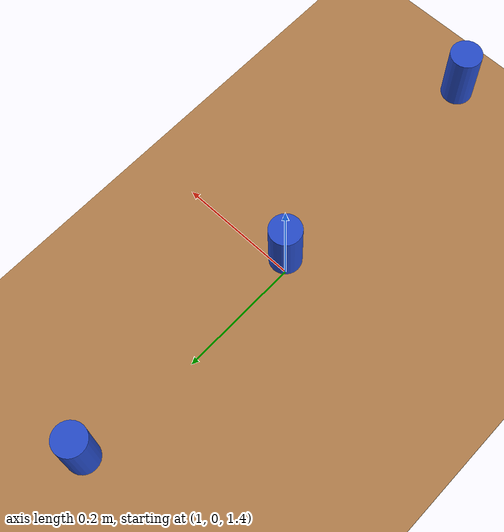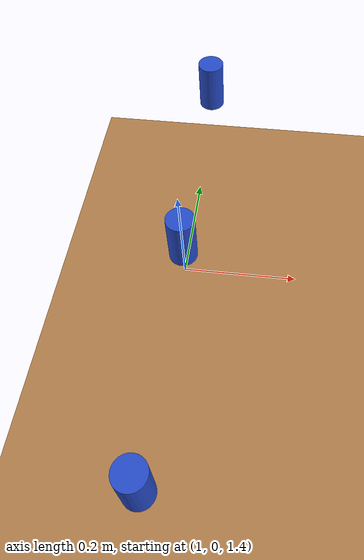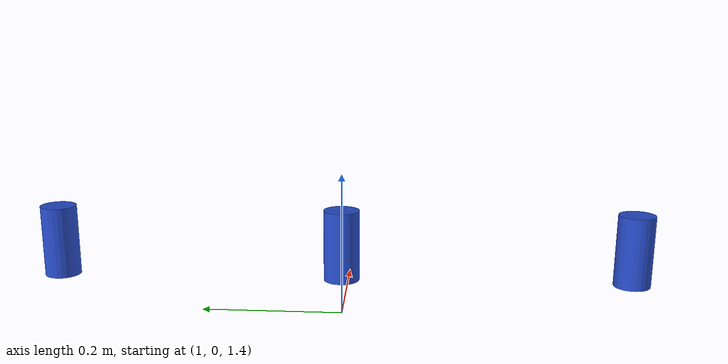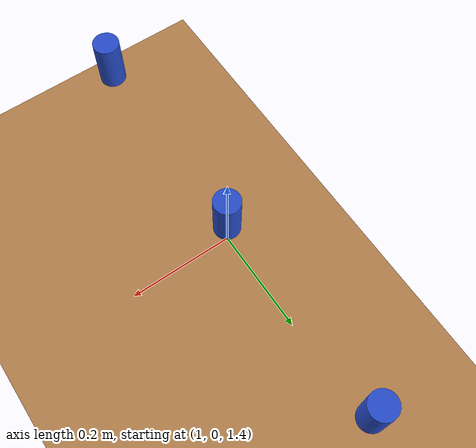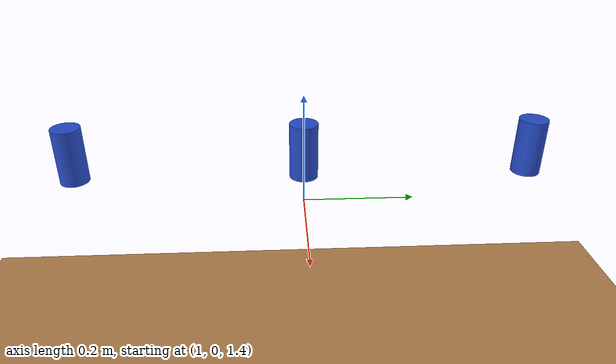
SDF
<?xml version="1.0" ?>
<sdf version="1.6">
  <world name="default">
    <include>
      <uri>model://ground_plane</uri>
    </include>

    <include>
      <uri>model://sun</uri>
    </include>

    <include>
      <uri>model://flat_table</uri>
      <name>Table</name>
      <pose>1.0 0.0 1.0 0 0 0</pose>
    </include>

    <include>
      <uri>model://cup</uri>
      <name>Cup_1</name>
      <pose>1.0 0.0 1.5 0 0 0.0</pose>
    </include>

    <include>
      <uri>model://cup</uri>
      <name>Cup_2</name>
      <pose>1.0 0.4 1.5 0 0 0.0</pose>
    </include>

    <include>
      <uri>model://cup</uri>
      <name>Cup_3</name>
      <pose>1.0 -0.4 1.5 0 0 0.0</pose>
    </include>

    <physics type="ode">
      <real_time_update_rate>1000.0</real_time_update_rate>
    </physics>

    <gravity>
      0.0 0.0 -9.81
    </gravity>

    <gui fullscreen='0'>
      <camera name='user_camera'>
        <pose frame=''>2.69836 -0.874828 2.04939 0 0.399643 2.75619</pose>
        <view_controller>orbit</view_controller>
        <projection_type>perspective</projection_type>
      </camera>
    </gui>

  </world>
</sdf>

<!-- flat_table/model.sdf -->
<sdf version='1.4'>
  <model name="flat_table">
      <static>1</static>
      <link name='link'>
        <inertial>
          <mass>0.25</mass>
          <inertia>
            <ixx>0.001</ixx>
            <ixy>0.000000</ixy>
            <ixz>0.000000</ixz>
            <iyy>0.001</iyy>
            <iyz>0.000000</iyz>
            <izz>0.001</izz>
          </inertia>
        </inertial>
        <collision name='collision'>
          <geometry>
            <box>
	       <size> 1.0 2.0 0.05 </size>
            </box>
          </geometry>
          <surface>
            <friction>
              <ode>
                <mu>30.0</mu>
                <mu2>30.0</mu2>
              </ode>
            </friction>
            <contact>
              <ode>
                <kp>1000000.0</kp>
                <kd>100.0</kd>
                <max_vel>1.0</max_vel>
                <min_depth>0.002</min_depth>
              </ode>
            </contact>
          </surface>
        </collision>
        <visual name='visual'>
          <geometry>
            <box>
	       <size> 1.0 2.0 0.05  </size>
            </box>
          </geometry>
          <material>
            <script>
              <uri>file://media/materials/scripts/gazebo.material</uri>
              <name>Gazebo/Wood</name>
            </script>
          </material>
        </visual>
        <velocity_decay>
          <linear>0.000000</linear>
          <angular>0.000000</angular>
        </velocity_decay>
        <self_collide>0</self_collide>
        <kinematic>0</kinematic>
        <gravity>1</gravity>
      </link>
  </model>
</sdf>

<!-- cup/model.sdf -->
<sdf version='1.4'>
  <model name="cup">
      <static>0</static>
      <link name='link'>
        <inertial>
          <mass>0.25</mass>
          <inertia>
            <ixx>0.001</ixx>
            <ixy>0.000000</ixy>
            <ixz>0.000000</ixz>
            <iyy>0.001</iyy>
            <iyz>0.000000</iyz>
            <izz>0.001</izz>
          </inertia>
        </inertial>
        <collision name='collision'>
          <geometry>
            <cylinder>
            	<radius>0.025</radius>
            	<length>0.100</length>
          	</cylinder>
          </geometry>
          <surface>
            <friction>
              <ode>
                <mu>30.0</mu>
                <mu2>30.0</mu2>
              </ode>
            </friction>
            <contact>
              <ode>
                <kp>1000000.0</kp>
                <kd>100.0</kd>
                <max_vel>1.0</max_vel>
                <min_depth>0.002</min_depth>
              </ode>
            </contact>
          </surface>
        </collision>
        <visual name='visual'>
          <geometry>
            <cylinder>
            	<radius>0.025</radius>
            	<length>0.100</length>
          	</cylinder>
          </geometry>
          <material>
            <script>
              <uri>file://media/materials/scripts/gazebo.material</uri>
              <name>Gazebo/Blue</name>
            </script>
          </material>
        </visual>
        <velocity_decay>
          <linear>0.000000</linear>
          <angular>0.000000</angular>
        </velocity_decay>
        <self_collide>0</self_collide>
        <kinematic>0</kinematic>
        <gravity>1</gravity>
      </link>
  </model>
</sdf>
